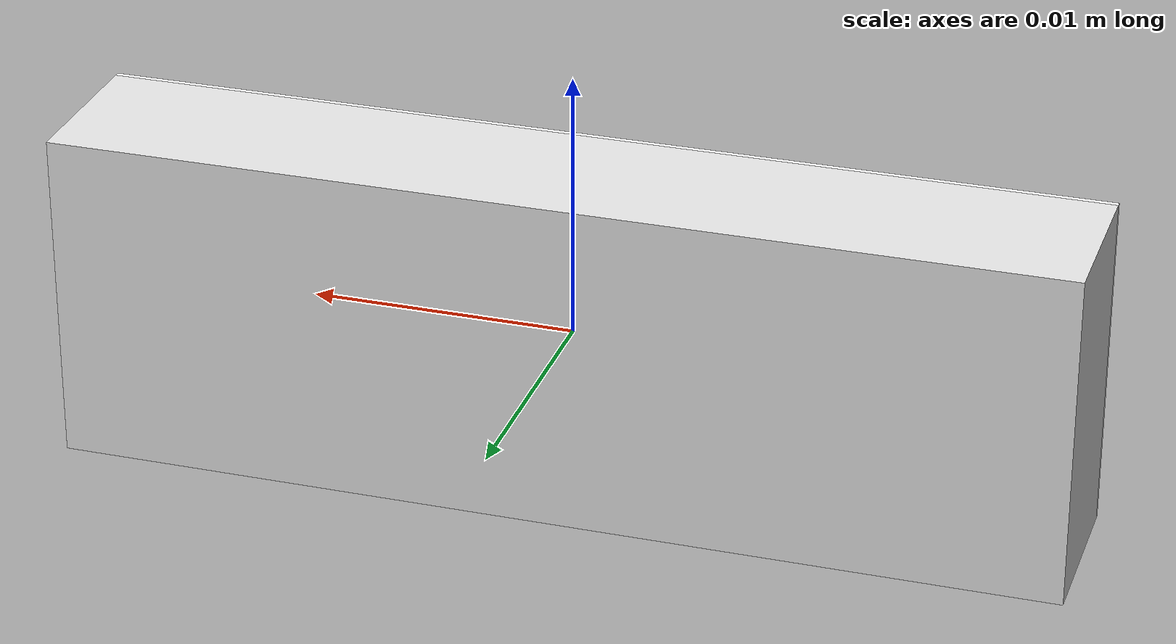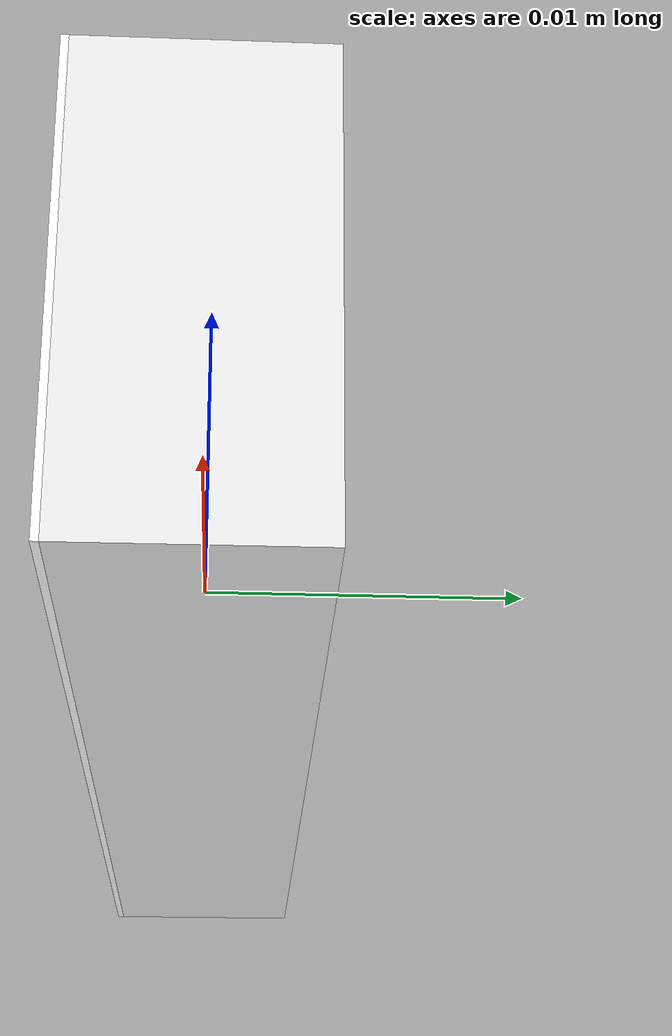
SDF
<?xml version="1.0"?>
<!-- GENERATED plate target. Printed dimensions come from
     generate_barcode_labels.py constants; do not hand-edit. -->
<sdf version="1.9">
  <model name="barcode_label_CA11B07">
    <static>true</static>
    <link name="label_link">
      <visual name="substrate">
        <geometry><box><size>0.03810 0.00635 0.01270</size></box></geometry>
        <material>
          <ambient>0.9 0.9 0.9 1</ambient>
          <diffuse>0.9 0.9 0.9 1</diffuse>
        </material>
      </visual>
      <visual name="print">
        <pose>0 -0.00327 0 1.5708 0 0</pose>
        <geometry><box><size>0.03810 0.01270 0.0002</size></box></geometry>
        <material>
          <ambient>1 1 1 1</ambient>
          <diffuse>1 1 1 1</diffuse>
          <pbr><metal>
            <albedo_map>model://barcode_labels/materials/textures/CA11B07.png</albedo_map>
            <metalness>0.0</metalness>
            <roughness>1.0</roughness>
          </metal></pbr>
        </material>
      </visual>
    </link>
  </model>
</sdf>
